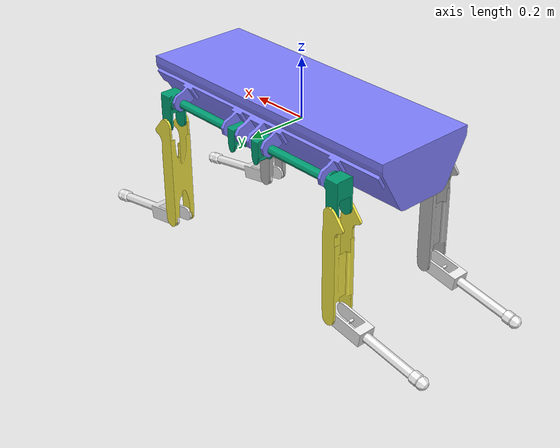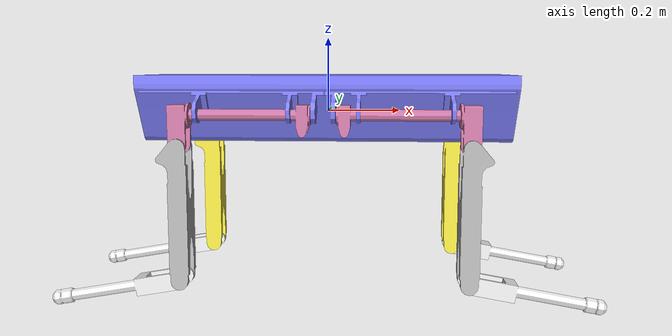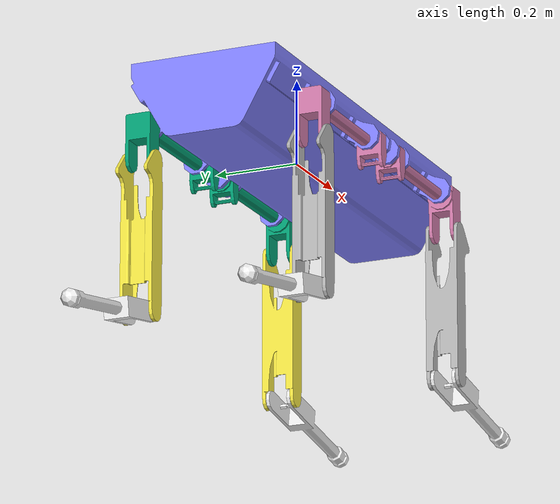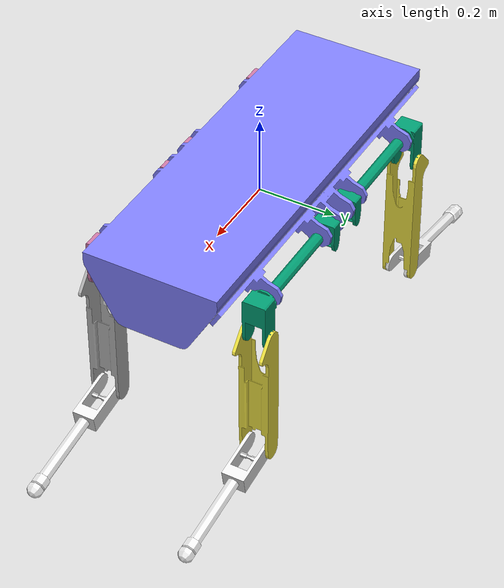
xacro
<?xml version="1.0"?>

<robot name="hyq" xmlns:xacro="http://ros.org/wiki/xacro">

	<!-- The following included files set up definitions of parts of the robot body -->
	<xacro:include filename="$(find hyq_description)/urdfs/common.xacro"/>
	<!-- HyQ trunk -->
	<xacro:include filename="$(find hyq_description)/urdfs/trunk/trunk_model.urdf.xacro"/>

	<!-- HyQ legs -->
	<xacro:include filename="$(find hyq_description)/urdfs/leg/leg.urdf.xacro"/>

	<!-- generic simulator_gazebo plugins for starting mechanism control, ros time -->
	<xacro:include filename="$(find hyq_description)/gazebo/gazebo.urdf.xacro"/>

	<!-- Now we can start using the macros included above to define the actual HyQ -->

	<!-- body -->
	<!-- trunk -->
	<xacro:hyq_trunk name="base">
		<!--origin xyz="-0.443 -0.191 -0.276" rpy="0 0 0"/-->
	</xacro:hyq_trunk>

	<!-- LF leg -->
<!-- Forcing the ordering LF RF LH RH. The trick works even for the joint states, by chance,
because HAA HFE and KFE are already in alphabetical order -->
	<xacro:hyq_leg
		name="01_lf"
		parent="trunk"
		reflect_hip="1"
		reflect_upper="1"
		reflect_front="1"
		knee_bent_backward="1"
		load_force_sensors="false">
		<origin xyz="${d_fh/2} ${d_lr/2} 0" rpy="0 ${PI/2} ${PI}"/>
	</xacro:hyq_leg>

	<!-- RF leg -->
<!-- Forcing the ordering LF RF LH RH. The trick works even for the joint states, by chance,
because HAA HFE and KFE are already in alphabetical order -->

	<xacro:hyq_leg
		name="02_rf"
		parent="trunk"
		reflect_hip="-1"
		reflect_upper="-1"
		reflect_front="1"
		knee_bent_backward="1"
		load_force_sensors="false">
		<origin xyz="${d_fh/2} ${-d_lr/2} 0" rpy="0 ${PI/2} 0"/>
	</xacro:hyq_leg>

	<!-- LH leg -->
<!-- Forcing the ordering LF RF LH RH. The trick works even for the joint states, by chance,
because HAA HFE and KFE are already in alphabetical order -->
	<xacro:hyq_leg
		name="03_lh"
		parent="trunk"
		reflect_hip="-1"
		reflect_upper="1"
		reflect_front="-1"
		knee_bent_backward="0"
		load_force_sensors="false">
		<origin xyz="${-d_fh/2} ${d_lr/2} 0" rpy="0 ${PI/2} ${PI}"/>
	</xacro:hyq_leg>

	<!-- RH leg -->
<!-- Forcing the ordering LF RF LH RH. The trick works even for the joint states, by chance,
because HAA HFE and KFE are already in alphabetical order -->
	<xacro:hyq_leg
		name="04_rh"
		parent="trunk"
		reflect_hip="1"
		reflect_upper="-1"
		reflect_front="-1"
		knee_bent_backward="0"
		load_force_sensors="false">
		<origin xyz="${-d_fh/2} ${-d_lr/2} 0" rpy="0 ${PI/2} 0"/>
	</xacro:hyq_leg>

</robot>

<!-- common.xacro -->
<robot>

	<property name="PI" value="3.1415926535897931"/>

	<!-- standard distances -->
	<property name="d_lr" value="0.414"/>
	<property name="d_fh" value="0.747"/>
	<property name="d_tbb" value="0.082"/>
	<property name="d_p1p2" value="0.35"/>

	<!-- Inertial values -->
	<!-- Trunk with hydraulic system -->
	<property name="xcom_trunk" value="0.027222"/>
	<property name="ycom_trunk" value="-0.0000235"/>
	<property name="zcom_trunk" value="0.042224"/>
	<property name="m_trunk" value="64.862"/>
	<property name="ixx_trunk" value="1.688238"/>
	<property name="iyy_trunk" value="8.665299"/>
	<property name="izz_trunk" value="9.243560"/>
	<property name="ixy_trunk" value="-0.028789"/>
	<property name="ixz_trunk" value="0.277694"/>
	<property name="iyz_trunk" value="0.003820"/>
	<!-- Hip assembly -->
	<property name="xcom_hipassembly" value="0.04263"/>
	<property name="ycom_hipassembly" value="0.0"/>
	<property name="zcom_hipassembly" value="0.16931"/>
	<property name="m_hipassembly" value="2.93"/>
	<property name="ixx_hipassembly" value="0.134705"/>
	<property name="iyy_hipassembly" value="0.144171"/>
	<property name="izz_hipassembly" value="0.011033"/>
	<property name="ixy_hipassembly" value="0.000036"/>
	<property name="ixz_hipassembly" value="0.022734"/>
	<property name="iyz_hipassembly" value="0.000051"/>
	<!-- Upper leg -->
	<property name="xcom_upperleg" value="0.15074"/>
	<property name="ycom_upperleg" value="0.02625"/>
	<property name="zcom_upperleg" value="0.0"/>
	<property name="m_upperleg" value="2.638"/>
	<property name="ixx_upperleg" value="0.005495"/>
	<property name="iyy_upperleg" value="0.087136"/>
	<property name="izz_upperleg" value="0.089871"/>
	<property name="ixy_upperleg" value="-0.007418"/>
	<property name="ixz_upperleg" value="-0.000102"/>
	<property name="iyz_upperleg" value="-0.000021"/>
	<!-- Lower leg -->
	<property name="xcom_lowerleg" value="0.1254"/>
	<property name="ycom_lowerleg" value="0.00005"/>
	<property name="zcom_lowerleg" value="-0.0001"/>
	<property name="m_lowerleg" value="0.881"/>
	<property name="ixx_lowerleg" value="0.000468"/>
	<property name="iyy_lowerleg" value="0.026409"/>
	<property name="izz_lowerleg" value="0.026181"/>
	<property name="ixy_lowerleg" value="0.0"/>
	<property name="ixz_lowerleg" value="0.0"/>
	<property name="iyz_lowerleg" value="0.0"/>

	<!-- PTU unit -->
	<property name="pan_velocity" value="1.0" />
	<property name="pan_range" value="2.775" />
	<property name="tilt_velocity" value="1.0" />
	<property name="tilt_up_range" value="0.52" />
	<property name="tilt_down_range" value="0.82" />
	<property name="joint_effort" value="30" />

	<!-- Asus Xtion Camera Location (Nominally 0) -->
	<property name="asus_xtion_x" value="0.009"/>
	<property name="asus_xtion_depth_y" value="0.045"/>
	<property name="asus_xtion_rgb_y" value="0.01875"/>
	<property name="asus_xtion_z" value="0.035"/>
	<property name="asus_xtion_roll" value="${-PI/2}"/>
	<property name="asus_xtion_pitch" value="0.0"/>
	<property name="asus_xtion_yaw" value="${-PI/2}"/>

	<!-- Kinect Camera Location (Nominally 0) -->
	<property name="kinect_x" value="0.025"/>
	<property name="kinect_ir_y" value="0.01"/>
	<property name="kinect_rgb_y" value="0.015"/>
	<property name="kinect_z" value="0.052"/>
	<property name="kinect_roll" value="${-PI/2}"/>
	<property name="kinect_pitch" value="0.0"/>
	<property name="kinect_yaw" value="${-PI/2}"/>

	<!-- Bumblebee mass and lengths for computing inertia tensor -->
	<property name="b2mass" value="0.342"/>
	<property name="b2lx" value="0.157"/>
	<property name="b2ly" value="0.036"/>
	<property name="b2lz" value="0.0474"/>

	<!-- Velodyne Lidar Location (Nominally 0) -->
	<property name="velodyne_x" value="0.0"/>
	<property name="velodyne_y" value="0.0"/>
	<property name="velodyne_z" value="0.09"/>

	<!-- HighDef Camera Location (Nominally 0) -->
	<property name="cal_high_def_x" value="0.0" />
	<property name="cal_high_def_y" value="0.0" />
	<property name="cal_high_def_z" value="0.0" />
	<property name="cal_high_def_roll" value="0.0" />
	<property name="cal_high_def_pitch" value="0.0" />
	<property name="cal_high_def_yaw" value="0.0" />

</robot>

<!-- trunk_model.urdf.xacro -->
<robot xmlns:xacro="http://ros.org/wiki/xacro">

	<!-- Things that are needed only for Gazebo (not the physical robot). These include sensor and controller plugin specifications -->
	<xacro:include filename="$(find hyq_description)/urdfs/trunk/trunk.gazebo.xacro"/>

	<!-- ================================ Trunk ================================ -->
	<!-- The xacro macro xacro:hyq_base contains: base and trunk -->
	<xacro:macro name="hyq_trunk" params="name">
		<!-- Floating-base Joint -->
		<joint name="floating_base" type="floating">
			<origin xyz="0 0 0" rpy="0 0 0"/>
			<parent link="${name}_link"/>
			<child link="trunk"/>
		</joint>

		<!-- Links -->
		<!-- Footprint link -->
		<link name="${name}_link">
			<visual>
				<geometry>
					<cylinder length="0.01" radius="0.01"/>
				</geometry>
			</visual>
		</link>
		<!-- Trunk link -->
		<link name="trunk">
			<inertial>
				<origin xyz="${xcom_trunk} ${ycom_trunk} ${zcom_trunk}"/>
				<mass value="${m_trunk}"/>
				<inertia ixx="${ixx_trunk}" iyy="${iyy_trunk}" izz="${izz_trunk}"
						 ixy="${ixy_trunk}" ixz="${ixz_trunk}" iyz="${iyz_trunk}"/>
			</inertial>
			<visual>
				<geometry>
					<mesh filename="package://hyq_description/meshes/trunk/trunk.dae" scale="1 1 1"/>
				</geometry>
			</visual>
			<collision>
				<geometry>
					<mesh filename="package://hyq_description/meshes/trunk/trunk.dae" scale="1 1 1"/>
				</geometry>
			</collision>
		</link>

		<!-- Extensions -->
		<xacro:trunk_gazebo name="trunk"/>
	</xacro:macro>

</robot>

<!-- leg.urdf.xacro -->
<robot xmlns:xacro="http://www.ros.org/wiki/xacro">

	<!-- Things that are needed only for Gazebo (not the physical robot). These include sensor and controller plugin specifications -->
	<xacro:include filename="$(find hyq_description)/urdfs/leg/leg.transmission.xacro"/>
	<xacro:include filename="$(find hyq_description)/urdfs/leg/leg.gazebo.xacro"/>

	<!-- ================================== Leg ================================== -->
	<!-- The xacro macro xacro:hyq_leg contains: hip assembly, upper and lower leg -->
	<xacro:macro name="hyq_leg" params="name parent *origin reflect_hip reflect_upper reflect_front">
		<!-- Joints -->
		<!-- Hip assembly joint -->
		<joint name="${name}_haa_joint" type="revolute">
			<insert_block name="origin"/>
			<parent link="${parent}"/>
			<child  link="${name}_hipassembly"/>
			<axis xyz="0 0 1"/>
			<limit effort="150.0" velocity="12.0" lower="${-7*PI/18}" upper="${PI/6}"/>
			<dynamics damping="0.1" friction="0" />
			<safety_controller k_position="100" k_velocity="100"
							   soft_lower_limit="-10" soft_upper_limit="12.45" />
		</joint>
		<!-- Upper leg joint -->
		<joint name="${name}_hfe_joint" type="revolute">
			<origin xyz="${d_tbb} 0 0" rpy="${reflect_upper*PI/2} 0 0"/>
			<parent link="${name}_hipassembly"/>
			<child  link="${name}_upperleg"/>
			<axis xyz="0 0 1"/>
			<limit effort="150.0" velocity="12.0"
				   lower="${-(1+reflect_front)*5*PI/36-(1-reflect_front)*7*PI/36}"
				   upper="${(1-reflect_front)*5*PI/36+(1+reflect_front)*7*PI/36}"/>
			<dynamics damping="0.1" friction="0" />
			<safety_controller k_position="100" k_velocity="100"
							   soft_lower_limit="-10" soft_upper_limit="12.45" />
		</joint>
		<!-- Lower leg joint -->
		<joint name="${name}_kfe_joint" type="revolute">
			<origin xyz="${d_p1p2} 0 0" rpy="0 0 0"/>
			<parent link="${name}_upperleg"/>
			<child  link="${name}_lowerleg"/>
			<axis xyz="0 0 1"/>
			<limit effort="150.0" velocity="12.0"
				   lower="${-(1+reflect_front)*7*PI/18+(1-reflect_front)*PI/18}"
				   upper="${(1-reflect_front)*7*PI/18-(1+reflect_front)*PI/18}"/>
			<dynamics damping="0.1" friction="0" />
			<safety_controller k_position="100" k_velocity="100"
							   soft_lower_limit="-10" soft_upper_limit="12.45" />
		<!-- Foot joint -->
		</joint>
		<joint name="${name}_foot_joint" type="fixed">
			<origin xyz="0.35 0 0" rpy="${PI/2} 0 ${-PI/2}"/>
			<parent link="${name}_lowerleg"/>
			<child  link="${name}_foot"/>
		</joint>

		<!-- Links -->
		<!-- Hip assembly link -->
		<link name="${name}_hipassembly">
			<inertial>
				<origin xyz="${xcom_hipassembly}
							 ${reflect_hip*ycom_hipassembly}
							 ${reflect_hip*zcom_hipassembly}"/>
				<mass value="${m_hipassembly}"/>
				<inertia ixx="${ixx_hipassembly}" iyy="${iyy_hipassembly}" izz="${izz_hipassembly}"
						 ixy="${reflect_hip*reflect_front*ixy_hipassembly}" ixz="${reflect_hip*reflect_front*ixz_hipassembly}" iyz="${iyz_hipassembly}"/>
			</inertial>
			<visual>
				<origin xyz="0 0 0" rpy="${(1-reflect_hip)*PI/2} 0 0"/>
				<geometry>
					<mesh filename="package://hyq_description/meshes/leg/hipassembly.dae" scale="1 1 1"/>
				</geometry>
			</visual>
			<collision>
				<origin xyz="0 0 0" rpy="${(1-reflect_hip)*PI/2} 0 0"/>
				<geometry>
					<mesh filename="package://hyq_description/meshes/leg/hipassembly.dae" scale="1 1 1"/>
				</geometry>
			</collision>
		</link>
		<!-- Upper leg link -->
		<link name="${name}_upperleg">
			<inertial>
				<origin xyz="${xcom_upperleg} ${reflect_upper*ycom_upperleg} ${zcom_upperleg}"/>
				<mass value="${m_upperleg}"/>
				<inertia ixx="${ixx_upperleg}" iyy="${iyy_upperleg}" izz="${izz_upperleg}"
						 ixy="${reflect_front*ixy_upperleg}" ixz="${reflect_front*ixz_upperleg}" iyz="${iyz_upperleg}"/>
			</inertial>
			<visual>
				<origin xyz="0 0 0" rpy="${(1-reflect_front)*PI/2} 0 0"/>
				<geometry>
					<mesh filename="package://hyq_description/meshes/leg/upperleg.dae" scale="1 1 1"/>
				</geometry>
			</visual>
			<collision>
				<origin xyz="0 0 0" rpy="${(1-reflect_front)*PI/2} 0 0"/>
				<geometry>
					<mesh filename="package://hyq_description/meshes/leg/upperleg.dae" scale="1 1 1"/>
				</geometry>
			</collision>
		</link>
		<!-- Lower leg link -->
		<link name="${name}_lowerleg">
			<inertial>
				<origin xyz="${xcom_lowerleg} ${ycom_lowerleg} ${zcom_lowerleg}"/>
				<mass value="${m_lowerleg}"/>
				<inertia ixx="${ixx_lowerleg}" iyy="${iyy_lowerleg}" izz="${izz_lowerleg}"
						 ixy="${ixy_lowerleg}" ixz="${ixz_lowerleg}" iyz="${iyz_lowerleg}"/>
			</inertial>
			<visual>
				<geometry>
					<mesh filename="package://hyq_description/meshes/leg/lowerleg.dae" scale="1 1 1"/>
				</geometry>
				<material name="white"/>
			</visual>
			<collision>
				<geometry>
					<mesh filename="package://hyq_description/meshes/leg/lowerleg.dae" scale="1 1 1"/>
				</geometry>
			</collision>
		</link>
		<!-- Foot link -->
		<link name="${name}_foot">
			<inertial>
				<origin xyz="0 0 0"/>
				<mass value="0.01"/>
				<inertia ixx="0.0" iyy="0.0" izz="0.0" ixy="0.0" ixz="0.0" iyz="0.0"/>
			</inertial>
			<collision>
				<origin xyz="0 0 0" rpy="0 0 0"/>
				<geometry>
					<sphere radius="0.02175"/>
				</geometry>
			</collision>
		</link>

		<!-- Extensions -->
		<xacro:leg_transmission name="${name}"/>
		<xacro:leg_gazebo name="${name}"/>
	</xacro:macro>

</robot>
